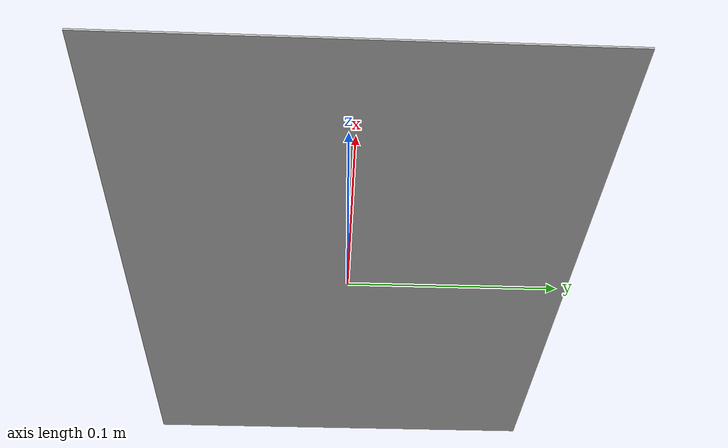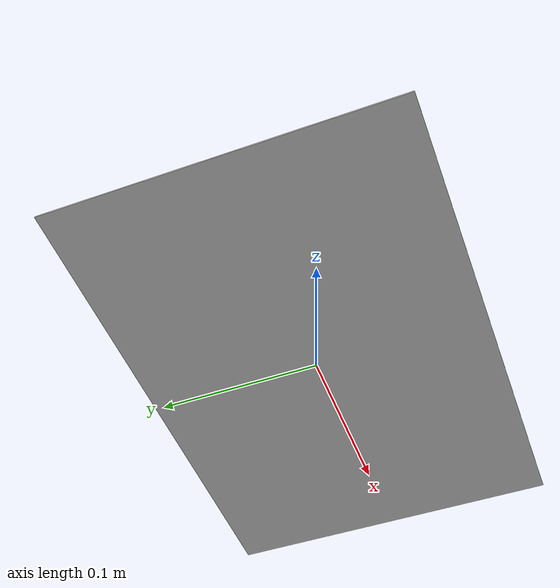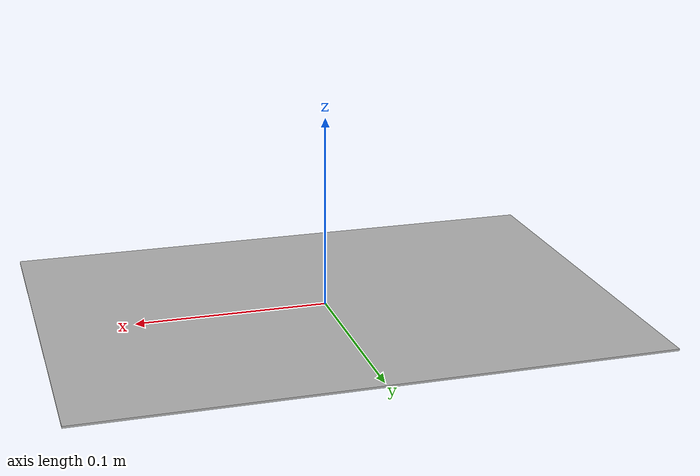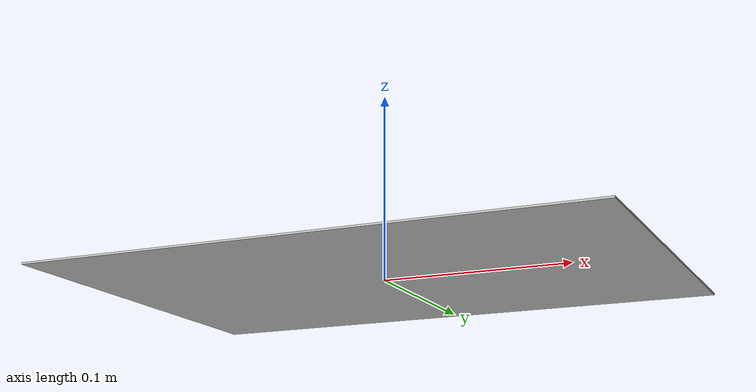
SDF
<sdf version="1.5">
  <model name="TicTacToe">
    <static>true</static>
    <link name="link">
      <pose>0.0 0.0 0.0005 0.0 0.0 0.0</pose>
      <collision name="collision">
        <geometry>
          <!-- Box or plane geometry is used -->
        <box><size>0.297 0.210 0.001</size></box></geometry>
      </collision>
      <visual name="visual">
        <geometry>
          <!-- Box or plane geometry is used -->
        <box><size>0.297 0.210 0.001</size></box></geometry>
        <material>
          <script>
            <name>tictactoe</name>
            <uri>model://tictactoe/materials/scripts/</uri>
            <uri>model://tictactoe/materials/textures/</uri>
          </script>
        </material>
      </visual>
    </link>
  </model>
</sdf>
